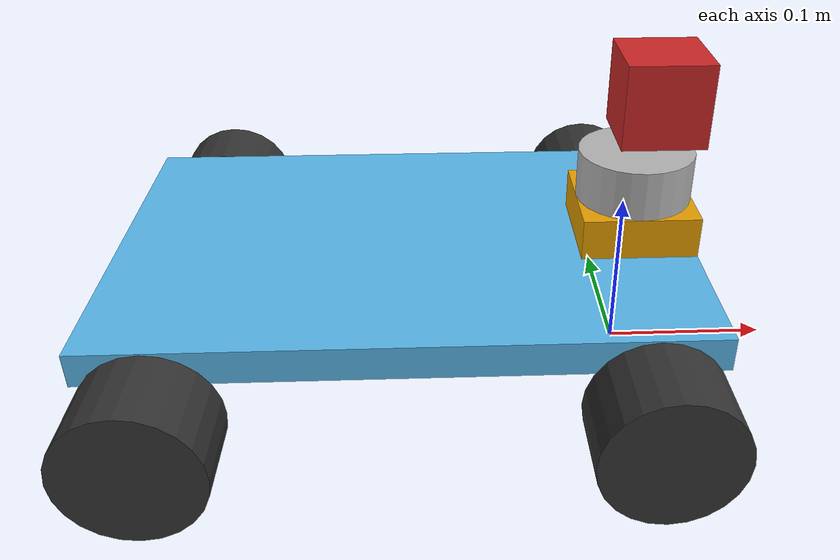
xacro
<?xml version="1.0" encoding="utf-8"?>
<robot xmlns:xacro="http://www.ros.org/wiki/xacro" name="body" >

  <xacro:include filename="$(find robot_description)/urdf/common.xacro" />
  <xacro:include filename="$(find robot_description)/urdf/gazebo.xacro" />
  <xacro:include filename="$(find robot_description)/urdf/laser.xacro" />

  <link name="base_footprint" />

  <link name="base_link" >
    <visual>
      <geometry>
        <box size="${body_length} ${body_width} ${body_height}" />
      </geometry>
    </visual>
    <collision>
      <geometry>
        <box size="${body_length} ${body_width} ${body_height}" />
      </geometry>
    </collision>
    <inertial>
      <mass value="${body_mass}" />
      <origin xyz="0 0 0" />
      <inertia
        ixx="${1/12 * body_mass * (body_height**2 + body_width**2)}" ixy="0.0" ixz="0.0"
        iyy="${1/12 * body_mass * (body_length**2 + body_height**2)}" iyz="0.0"
        izz="${1/12 * body_mass * (body_width**2 + body_length**2)}" />
    </inertial>
  </link>

  <joint name="base_footprint_to_base_link" type="fixed" >
    <parent link="base_footprint" />
    <child link="base_link" />
    <origin xyz="${-body_length/2 + wheel_radius} 0 ${wheel_radius + wheel_z_offset}" rpy="0 0 0" />
  </joint>

  <xacro:create_wheel name="left_front" xyz="${body_length/2 - wheel_radius} ${body_width/2 + wheel_width/2 + wheel_offset} ${-wheel_z_offset}" friction="100.0" type="continuous" mass="${wheel_mass}"  />
  <xacro:create_wheel name="right_front" xyz="${body_length/2 - wheel_radius} ${-body_width/2 - wheel_width/2 - wheel_offset} ${-wheel_z_offset}" friction="100.0" type="continuous" mass="${wheel_mass}" />
  <xacro:create_wheel name="left_back" xyz="${-body_length/2 + wheel_radius} ${body_width/2 + wheel_width/2 + wheel_offset} ${-wheel_z_offset}"  friction="0.0" type="fixed" mass="${wheel_mass}" />
  <xacro:create_wheel name="right_back" xyz="${-body_length/2 + wheel_radius} ${-body_width/2 - wheel_width/2 - wheel_offset} ${-wheel_z_offset}" friction="0.0" type="fixed" mass="${wheel_mass}" />

  <joint name="camera_joint" type="fixed">
    <axis xyz="0 0 0" />
    <origin xyz="${body_length/2 - 0.025} 0 0.1" rpy="0 ${0 * pi/180.0} 0"/>
    <parent link="base_link"/>
    <child link="camera_link"/>
  </joint>

  <!-- Camera -->
  <link name="camera_link">
    <collision>
      <origin xyz="0 0 0" rpy="0 0 0"/>
      <geometry>
    <box size="0.05 0.05 0.05"/>
      </geometry>
    </collision>

    <visual>
      <origin xyz="0 0 0" rpy="0 0 0"/>
      <geometry>
    <box size="0.05 0.05 0.05"/>
      </geometry>
      <material name="red"/>
    </visual>

    <inertial>
      <mass value="1e-5" />
      <origin xyz="0 0 0" rpy="0 0 0"/>
      <inertia ixx="1e-6" ixy="0" ixz="0" iyy="1e-6" iyz="0" izz="1e-6" />
    </inertial>
  </link>

  <xacro:add_laser xyz="${body_length/2 - 0.035} 0 ${laser_z}" rpy="0 0 0" parent_link="base_link" />

</robot>

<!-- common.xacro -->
<robot xmlns:xacro="http://www.ros.org/wiki/xacro" >
  <xacro:property name="body_length" value="0.35" />
  <xacro:property name="body_width" value="0.24" />
  <xacro:property name="body_height" value="0.02" />
  <xacro:property name="body_mass" value="4.0" />
  <xacro:property name="wheel_z_offset" value="0.03" />
  <xacro:property name="wheel_radius" value="0.04" />
  <xacro:property name="wheel_width" value="0.05" />
  <xacro:property name="wheel_mass" value="0.3" />
  <xacro:property name="wheel_offset" value="0.001" />
  <xacro:property name="camera_x" value="0.075" />
  <xacro:property name="camera_z" value="0.45" />
  <xacro:property name="camera_angle" value="${39 * pi/180.0}" /> <!--25 for realsense model-->
  <xacro:property name="arm_x_offset" value="${body_length/2 - 0.06 - 0.02 + 0.0064}" />
  <xacro:property name="arm_z_offset" value="${body_height}" />
  <xacro:property name="laser_x" value="0.0" />
  <xacro:property name="laser_y" value="0.0" />
  <xacro:property name="laser_z" value="${0.05}" />

  <xacro:macro name="create_wheel" params="name xyz friction type mass">
    <link name="${name}_wheel_link">
      <visual>
        <origin xyz="0 0 0" rpy="${pi/2} 0 ${pi}" />
        <geometry>
          <cylinder length="${wheel_width}" radius="${wheel_radius}"/>
        </geometry>
        <material name="blackish">
          <color rgba="0.2 0.2 0.2 1"/>
        </material>
      </visual>
      <collision>
        <origin xyz="0 0 0" rpy="${pi/2} 0 0" />
        <geometry>
          <cylinder length="${wheel_width}" radius="${wheel_radius}"/>>
        </geometry>
      </collision>
      <inertial>
        <mass value="${mass}" />
        <inertia ixx="${0.0833333 * mass * (3 * wheel_radius**2 + wheel_width**2)}" ixy="0.0" ixz="0.0"
          iyy="${0.5 * mass * wheel_radius**2}" iyz="0.0"
          izz="${0.083333 * mass *(3 * wheel_radius**2 + wheel_width**2)}" />
      </inertial>
    </link>

    <gazebo reference="${name}_wheel_link">
      <mu1 value="${friction}"/>
      <mu2 value="${friction}"/>
      <kp  value="1000000.0" />
      <kd  value="1.0" />
      <maxVel  value="1.0" />
      <minDepth  value="0.0" />
      <material value="Gazebo/FlatBlack" />
    </gazebo>

    <joint name="${name}_wheel_joint" type="${type}">
      <origin xyz="${xyz}" rpy="0 0 0" />
      <parent link="base_link"/>
      <child link="${name}_wheel_link"/>
      <axis xyz="0 1 0"/>

      <calibration rising="0.0"/>
      <dynamics damping="1.0" friction="0.0"/>
      <limit effort="400" velocity="50.0" />
      <safety_controller k_velocity="50" />
    </joint>
  </xacro:macro>

</robot>

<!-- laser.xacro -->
<robot xmlns:xacro="http://www.ros.org/wiki/xacro" >

  <xacro:macro name="add_laser" params="xyz rpy parent_link" >

    <link name="laser_link">
      <origin rpy="0 0 0" xyz="0 0 0"/>
      <inertial>
        <mass value="1"/>
        <origin xyz="0 0 0"/>
        <inertia ixx="1" ixy="0" ixz="0" iyy="1" iyz="0" izz="1"/>
      </inertial>
      <visual name="visual">
        <origin xyz="0 0 0" rpy="0 0 0"/>
        <geometry>
          <cylinder radius="0.035" length="0.03" />
        </geometry>
      </visual>
      <collision>
        <geometry>
          <cylinder radius="0.035" length="0.03" />
        </geometry>
      </collision>
    </link>

    <link name="laser" >
      <origin xyz="0 0 0" rpy="0 0 0" />
      <inertial>
        <mass value="1" />
        <inertia ixx="1" ixy="0" ixz="0" iyy="1" iyz="0" izz="1" />
      </inertial>
      <visual>
        <geometry>
          <box size="0.07 0.07 0.03" />
        </geometry>
      </visual>
      <collision>
        <geometry>
          <box size="0.07 0.07 0.03" />
        </geometry>
      </collision>
    </link>

    <gazebo reference="laser" >
      <material value="Gazebo/FlatBlack" />
    </gazebo>

    <joint name="laser_joint" type="fixed" >
      <origin xyz="0 0 -0.03" />
      <parent link="laser_link" />
      <child link="laser" />
    </joint>

    <gazebo reference="laser_link">
      <sensor type="ray" name="laser">
          <visualize>False</visualize>
          <update_rate>20</update_rate>
          <ray>
            <scan>
              <horizontal>
                <samples>720</samples>
                <resolution>1</resolution>
                <min_angle>-3.1415</min_angle>
                <max_angle>3.1415</max_angle>
              </horizontal>
            </scan>
            <range>
              <min>0.10</min>
              <max>4.0</max>
              <resolution>0.01</resolution>
            </range>
            <noise>
              <type>gaussian</type>
              <mean>0.0</mean>
              <stddev>0.00</stddev>
            </noise>
          </ray>
          <!-- Plugin to simulate ros laser topic in gazebo and ros-->
          <plugin name="gazebo_ros_hokuyo_controller" filename="libgazebo_ros_laser.so">
            <topicName>scan</topicName>
            <frameName>laser_link</frameName>
          </plugin>
      </sensor>
    </gazebo>

    <joint name="${parent_link}_laser_joint" type="fixed" >
      <origin xyz="${xyz}" rpy="${rpy}" />
      <parent link="${parent_link}" />
      <child link="laser_link" />
    </joint>

  </xacro:macro>

</robot>
